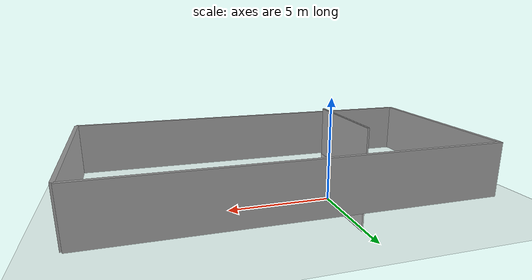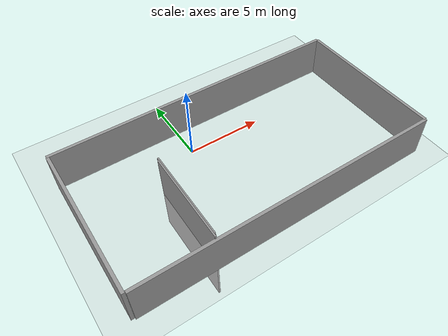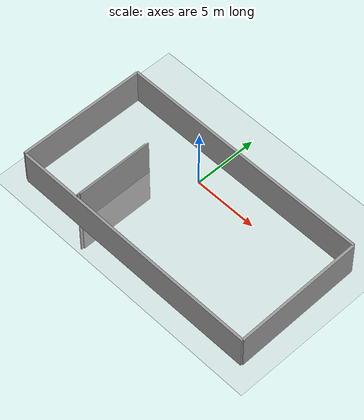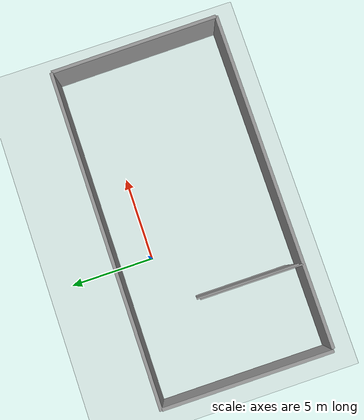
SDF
<sdf version="1.4">
 <world name="default">
  <light name="sun" type="directional">
   <pose>0 0 10 0 -0 0</pose>
   <diffuse>0.8 0.8 0.8 1</diffuse>
   <specular>0.2 0.2 0.2 1</specular>
   <attenuation>
    <range>1000</range>
    <constant>0.9</constant>
    <linear>0.01</linear>
    <quadratic>0.001</quadratic>
   </attenuation>
   <direction>-0.5 0.1 -0.9</direction>
  </light>
  <model name="ground_plane">
   <static>1</static>
   <link name="link">
    <collision name="collision">
     <geometry><plane><normal>0 0 1</normal><size>100 100</size></plane></geometry>
     <surface><friction><ode><mu>100</mu><mu2>50</mu2></ode></friction></surface>
    </collision>
    <visual name="visual">
     <cast_shadows>0</cast_shadows>
     <geometry><plane><normal>0 0 1</normal><size>100 100</size></plane></geometry>
     <material>
      <script><uri>file://media/materials/scripts/gazebo.material</uri><name>Gazebo/Grey</name></script>
     </material>
    </visual>
    <velocity_decay><linear>0</linear><angular>0</angular></velocity_decay>
   </link>
  </model>
  <physics type="ode">
   <max_step_size>0.001</max_step_size>
   <real_time_factor>1</real_time_factor>
   <real_time_update_rate>1000</real_time_update_rate>
   <gravity>0 0 -9.8</gravity>
  </physics>
  <scene><ambient>0.8 0.8 0.8 1</ambient><background>0.7 0.7 0.7 1</background><shadows>1</shadows></scene>
  <spherical_coordinates>
   <surface_model>EARTH_WGS84</surface_model>
   <latitude_deg>0</latitude_deg>
   <longitude_deg>0</longitude_deg>
   <elevation>0</elevation>
   <heading_deg>0</heading_deg>
  </spherical_coordinates>
  <model name="grey_wall_3">
   <static>1</static>
   <link name="link">
    <pose>4.01 3 0 0 -0 1.5708</pose>
    <collision name="collision"><geometry><box><size>6 0.1 6</size></box></geometry></collision>
    <visual name="visual">
     <cast_shadows>0</cast_shadows>
     <geometry><box><size>6 0.1 6</size></box></geometry>
     <material>
      <script>
       <uri>model://grey_wall/materials/scripts</uri>
       <uri>model://grey_wall/materials/textures</uri>
       <name>vrc/grey_wall_stone</name>
      </script>
     </material>
    </visual>
    <velocity_decay><linear>0</linear><angular>0</angular></velocity_decay>
   </link>
   <pose>-7.0151 -7.74007 0 0 -0 0</pose>
  </model>
  <model name="grey_wall_4">
   <static>1</static>
   <link name="link">
    <pose>3.99 3 0 0 -0 1.5708</pose>
    <collision name="collision"><geometry><box><size>6 0.1 6</size></box></geometry></collision>
    <visual name="visual">
     <cast_shadows>0</cast_shadows>
     <geometry><box><size>6 0.1 6</size></box></geometry>
     <material>
      <script>
       <uri>model://grey_wall/materials/scripts</uri>
       <uri>model://grey_wall/materials/textures</uri>
       <name>vrc/grey_wall_tile</name>
      </script>
     </material>
    </visual>
    <velocity_decay><linear>0</linear><angular>0</angular></velocity_decay>
   </link>
   <pose>-7.07183 -7.93279 0 0 -0 0</pose>
  </model>
  <model name="grey_wall_5">
   <static>1</static>
   <link name="link">
    <pose>0 0 1.4 0 -0 0</pose>
    <collision name="collision"><geometry><box><size>20 0.2 2.8</size></box></geometry></collision>
    <visual name="visual">
     <cast_shadows>0</cast_shadows>
     <geometry><box><size>20 0.2 2.8</size></box></geometry>
     <material>
      <script>
       <uri>model://grey_wall/materials/scripts</uri>
       <uri>model://grey_wall/materials/textures</uri>
       <name>vrc/grey_wall</name>
      </script>
     </material>
    </visual>
    <velocity_decay><linear>0</linear><angular>0</angular></velocity_decay>
   </link>
   <pose>1.83618 2.04898 -0 0 -0 0</pose>
  </model>
  <model name="grey_wall_6">
   <static>1</static>
   <link name="link">
    <pose>0 0 1.4 0 -0 0</pose>
    <collision name="collision"><geometry><box><size>20 0.2 2.8</size></box></geometry></collision>
    <visual name="visual">
     <cast_shadows>0</cast_shadows>
     <geometry><box><size>20 0.2 2.8</size></box></geometry>
     <material>
      <script>
       <uri>model://grey_wall/materials/scripts</uri>
       <uri>model://grey_wall/materials/textures</uri>
       <name>vrc/grey_wall_square</name>
      </script>
     </material>
    </visual>
    <velocity_decay><linear>0</linear><angular>0</angular></velocity_decay>
   </link>
   <pose>2 -8 0 0 -0 0</pose>
  </model>
  <model name="grey_wall_7">
   <static>1</static>
   <link name="link">
    <pose>0 0 1.4 0 -0 0</pose>
    <collision name="collision"><geometry><box><size>10 0.2 2.8</size></box></geometry></collision>
    <visual name="visual">
     <cast_shadows>0</cast_shadows>
     <geometry><box><size>10 0.2 2.8</size></box></geometry>
     <material>
      <script>
       <uri>model://grey_wall/materials/scripts</uri>
       <uri>model://grey_wall/materials/textures</uri>
       <name>vrc/grey_wall_design</name>
      </script>
     </material>
    </visual>
    <velocity_decay><linear>0</linear><angular>0</angular></velocity_decay>
   </link>
   <pose>-8.1131 -3.00371 0 0 -0 1.56908</pose>
  </model>
  <model name="grey_wall_8">
   <static>1</static>
   <link name="link">
    <pose>0 0 1.4 0 -0 0</pose>
    <collision name="collision"><geometry><box><size>10 0.2 2.8</size></box></geometry></collision>
    <visual name="visual">
     <cast_shadows>0</cast_shadows>
     <geometry><box><size>10 0.2 2.8</size></box></geometry>
     <material>
      <script>
       <uri>model://grey_wall/materials/scripts</uri>
       <uri>model://grey_wall/materials/textures</uri>
       <name>vrc/grey_wall_triangle</name>
      </script>
     </material>
    </visual>
    <velocity_decay><linear>0</linear><angular>0</angular></velocity_decay>
   </link>
   <pose>11.9125 -2.97517 0 0 0 -1.5573</pose>
  </model>
 </world>
</sdf>
